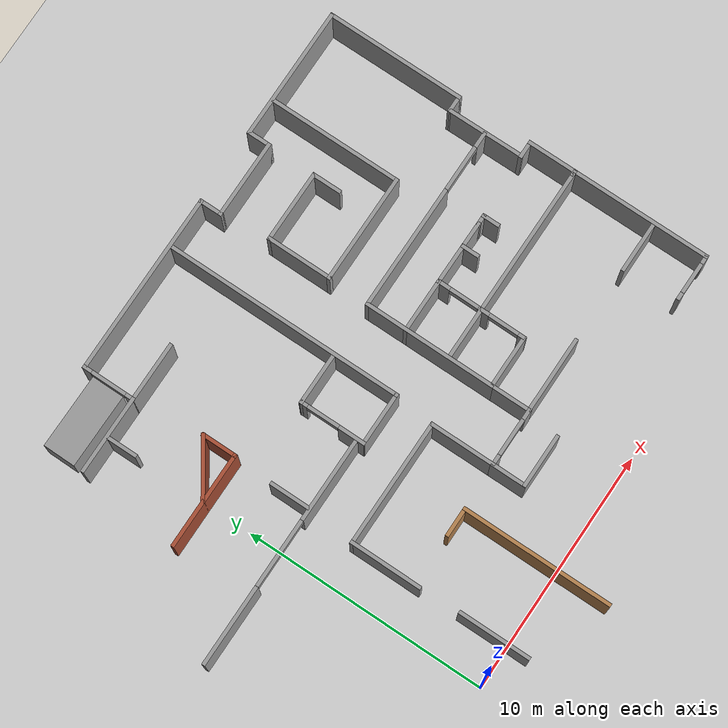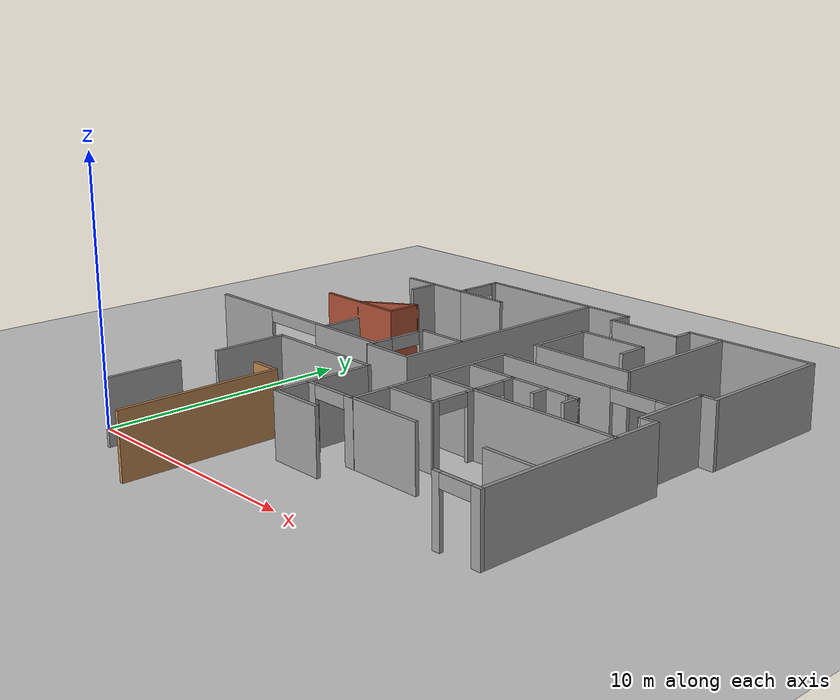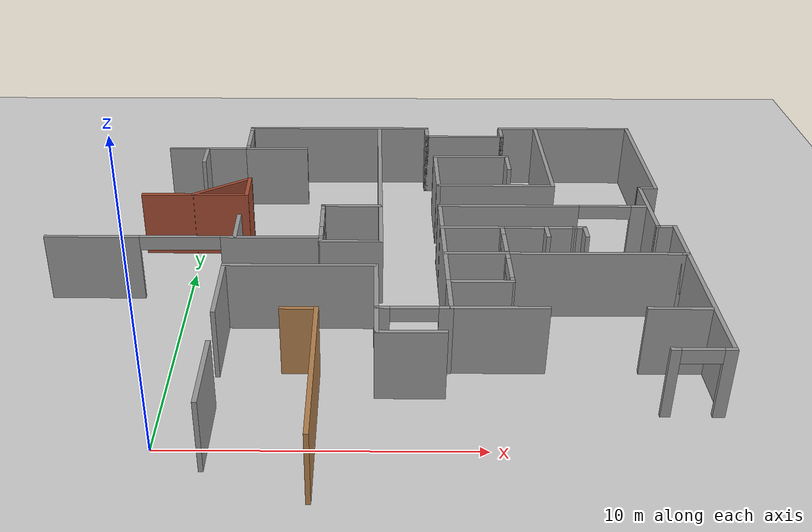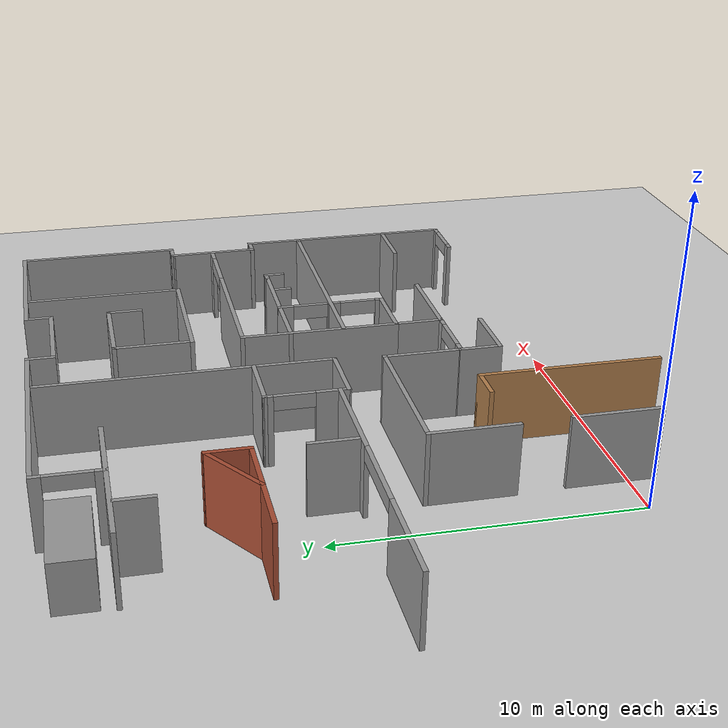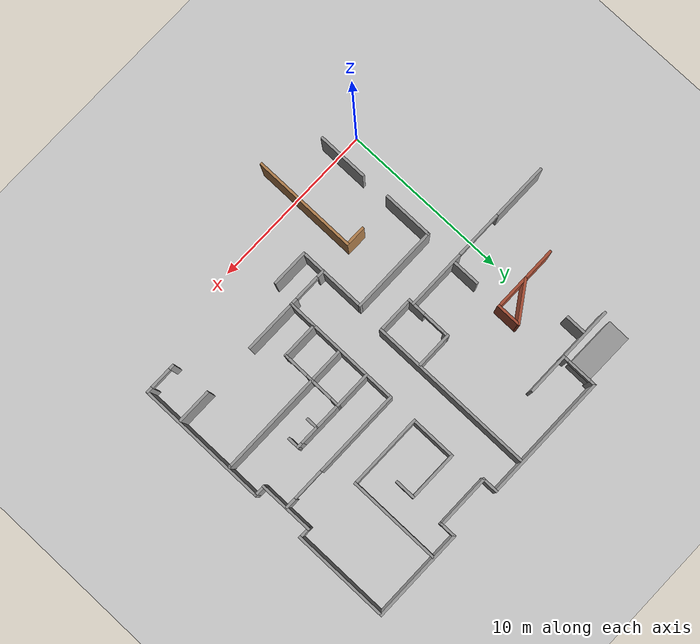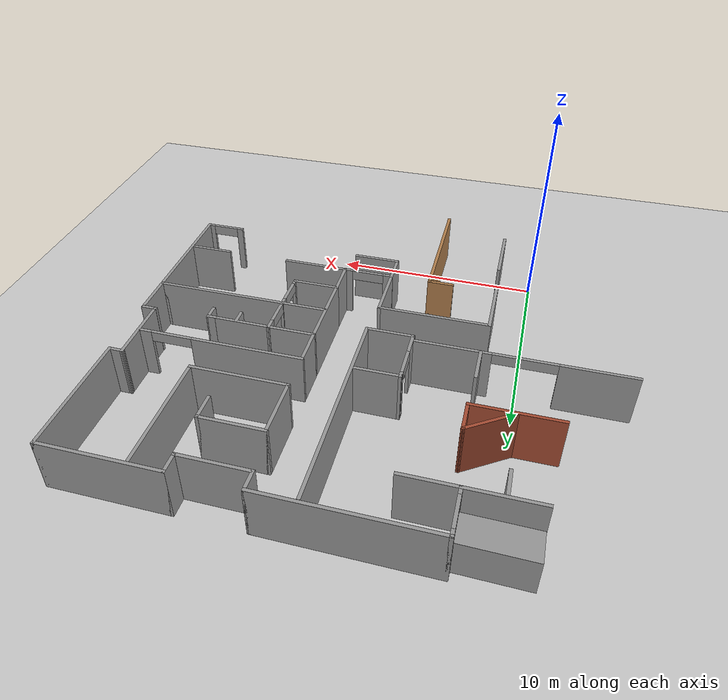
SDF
<sdf version="1.6">
 <world name="default">
  <model name="ground_plane">
   <static>1</static>
   <link name="link">
    <collision name="collision">
     <geometry><plane><normal>0 0 1</normal><size>100 100</size></plane></geometry>
     <surface><friction><ode><mu>100</mu><mu2>50</mu2></ode></friction></surface>
    </collision>
    <visual name="visual">
     <cast_shadows>0</cast_shadows>
     <geometry><plane><normal>0 0 1</normal><size>100 100</size></plane></geometry>
     <material>
      <script><uri>file://media/materials/scripts/gazebo.material</uri><name>Gazebo/Grey</name></script>
     </material>
    </visual>
   </link>
  </model>
  <model name="shopping01">
   <pose>-0.21266 0.4735 0 0 -0 0</pose>
   <link name="Wall_10">
    <pose>1.66978 16.52 0 0 -0 1.5708</pose>
    <visual name="Wall_10_Visual_0">
     <pose>-0.930319 0 1.25 0 -0 0</pose>
     <geometry><box><size>0.389362 0.15 2.5</size></box></geometry>
     <material>
      <script><uri>file://media/materials/scripts/gazebo.material</uri><name>Gazebo/Grey</name></script>
      <ambient>1 1 1 1</ambient>
     </material>
     <meta><layer>0</layer></meta>
    </visual>
    <collision name="Wall_10_Collision_0">
     <geometry><box><size>0.389362 0.15 2.5</size></box></geometry>
     <pose>-0.930319 0 1.25 0 -0 0</pose>
    </collision>
    <visual name="Wall_10_Visual_1">
     <pose>0.932354 0 1.25 0 -0 0</pose>
     <geometry><box><size>0.385291 0.15 2.5</size></box></geometry>
     <material>
      <script><uri>file://media/materials/scripts/gazebo.material</uri><name>Gazebo/Grey</name></script>
      <ambient>1 1 1 1</ambient>
     </material>
     <meta><layer>0</layer></meta>
    </visual>
    <collision name="Wall_10_Collision_1">
     <geometry><box><size>0.385291 0.15 2.5</size></box></geometry>
     <pose>0.932354 0 1.25 0 -0 0</pose>
    </collision>
    <visual name="Wall_10_Visual_2">
     <pose>0.002035 0 2.25 0 -0 0</pose>
     <geometry><box><size>1.47535 0.15 0.5</size></box></geometry>
     <material>
      <script><uri>file://media/materials/scripts/gazebo.material</uri><name>Gazebo/Grey</name></script>
      <ambient>1 1 1 1</ambient>
     </material>
     <meta><layer>0</layer></meta>
    </visual>
    <collision name="Wall_10_Collision_2">
     <geometry><box><size>1.47535 0.15 0.5</size></box></geometry>
     <pose>0.002035 0 2.25 0 -0 0</pose>
    </collision>
   </link>
   <link name="Wall_11">
    <collision name="Wall_11_Collision">
     <geometry><box><size>7.5 0.15 2.5</size></box></geometry>
     <pose>0 0 1.25 0 -0 0</pose>
    </collision>
    <visual name="Wall_11_Visual">
     <pose>0 0 1.25 0 -0 0</pose>
     <geometry><box><size>7.5 0.15 2.5</size></box></geometry>
     <material>
      <script><uri>file://media/materials/scripts/gazebo.material</uri><name>Gazebo/Grey</name></script>
      <ambient>1 1 1 1</ambient>
     </material>
     <meta><layer>0</layer></meta>
    </visual>
    <pose>5.34478 17.57 0 0 -0 0</pose>
   </link>
   <link name="Wall_119">
    <pose>0.137343 8.01732 0 0 -0 0</pose>
    <visual name="Wall_119_Visual_0">
     <pose>-3.20549 0 1.25 0 -0 0</pose>
     <geometry><box><size>3.33901 0.15 2.5</size></box></geometry>
     <material>
      <script><uri>file://media/materials/scripts/gazebo.material</uri><name>Gazebo/Grey</name></script>
      <ambient>1 1 1 1</ambient>
     </material>
     <meta><layer>0</layer></meta>
    </visual>
    <collision name="Wall_119_Collision_0">
     <geometry><box><size>3.33901 0.15 2.5</size></box></geometry>
     <pose>-3.20549 0 1.25 0 -0 0</pose>
    </collision>
    <visual name="Wall_119_Visual_1">
     <pose>3.08493 0 1.25 0 -0 0</pose>
     <geometry><box><size>3.58014 0.15 2.5</size></box></geometry>
     <material>
      <script><uri>file://media/materials/scripts/gazebo.material</uri><name>Gazebo/Grey</name></script>
      <ambient>1 1 1 1</ambient>
     </material>
     <meta><layer>0</layer></meta>
    </visual>
    <collision name="Wall_119_Collision_1">
     <geometry><box><size>3.58014 0.15 2.5</size></box></geometry>
     <pose>3.08493 0 1.25 0 -0 0</pose>
    </collision>
    <visual name="Wall_119_Visual_2">
     <pose>-0.120565 0 2.25 0 -0 0</pose>
     <geometry><box><size>2.83085 0.15 0.5</size></box></geometry>
     <material>
      <script><uri>file://media/materials/scripts/gazebo.material</uri><name>Gazebo/Grey</name></script>
      <ambient>1 1 1 1</ambient>
     </material>
     <meta><layer>0</layer></meta>
    </visual>
    <collision name="Wall_119_Collision_2">
     <geometry><box><size>2.83085 0.15 0.5</size></box></geometry>
     <pose>-0.120565 0 2.25 0 -0 0</pose>
    </collision>
   </link>
   <link name="Wall_12">
    <collision name="Wall_12_Collision">
     <geometry><box><size>1 0.15 2.5</size></box></geometry>
     <pose>0 0 1.25 0 -0 0</pose>
    </collision>
    <visual name="Wall_12_Visual">
     <pose>0 0 1.25 0 -0 0</pose>
     <geometry><box><size>1 0.15 2.5</size></box></geometry>
     <material>
      <script><uri>file://media/materials/scripts/gazebo.material</uri><name>Gazebo/Grey</name></script>
      <ambient>1 1 1 1</ambient>
     </material>
     <meta><layer>0</layer></meta>
    </visual>
    <pose>9.01978 17.145 0 0 -0 -1.5708</pose>
   </link>
   <link name="Wall_121">
    <collision name="Wall_121_Collision">
     <geometry><box><size>9.81925 0.15 2.5</size></box></geometry>
     <pose>0 0 1.25 0 -0 0</pose>
    </collision>
    <visual name="Wall_121_Visual">
     <pose>0 0 1.25 0 -0 0</pose>
     <geometry><box><size>9.81925 0.15 2.5</size></box></geometry>
     <material>
      <script><uri>file://media/materials/scripts/gazebo.material</uri><name>Gazebo/Grey</name></script>
      <ambient>1 1 1 1</ambient>
     </material>
     <meta><layer>0</layer></meta>
    </visual>
    <pose>7.04005 12.5786 0 0 -0 -1.57076</pose>
   </link>
   <link name="Wall_122">
    <collision name="Wall_122_Collision">
     <geometry><box><size>2.25 0.15 2.5</size></box></geometry>
     <pose>0 0 1.25 0 -0 0</pose>
    </collision>
    <visual name="Wall_122_Visual">
     <pose>0 0 1.25 0 -0 0</pose>
     <geometry><box><size>2.25 0.15 2.5</size></box></geometry>
     <material>
      <script><uri>file://media/materials/scripts/gazebo.material</uri><name>Gazebo/Grey</name></script>
      <ambient>1 1 1 1</ambient>
     </material>
     <meta><layer>0</layer></meta>
    </visual>
    <pose>5.99022 7.74395 0 0 -0 3.14159</pose>
   </link>
   <link name="Wall_123">
    <pose>4.94005 9.07858 0 0 -0 1.57092</pose>
    <visual name="Wall_123_Visual_0">
     <pose>-0.843207 0 1.25 0 -0 0</pose>
     <geometry><box><size>1.13283 0.15 2.5</size></box></geometry>
     <material>
      <script><uri>file://media/materials/scripts/gazebo.material</uri><name>Gazebo/Grey</name></script>
      <ambient>1 1 1 1</ambient>
     </material>
     <meta><layer>0</layer></meta>
    </visual>
    <collision name="Wall_123_Collision_0">
     <geometry><box><size>1.13283 0.15 2.5</size></box></geometry>
     <pose>-0.843207 0 1.25 0 -0 0</pose>
    </collision>
    <visual name="Wall_123_Visual_1">
     <pose>1.23871 0 1.25 0 -0 0</pose>
     <geometry><box><size>0.341833 0.15 2.5</size></box></geometry>
     <material>
      <script><uri>file://media/materials/scripts/gazebo.material</uri><name>Gazebo/Grey</name></script>
      <ambient>1 1 1 1</ambient>
     </material>
     <meta><layer>0</layer></meta>
    </visual>
    <collision name="Wall_123_Collision_1">
     <geometry><box><size>0.341833 0.15 2.5</size></box></geometry>
     <pose>1.23871 0 1.25 0 -0 0</pose>
    </collision>
    <visual name="Wall_123_Visual_2">
     <pose>0.3955 0 2.25 0 -0 0</pose>
     <geometry><box><size>1.34458 0.15 0.5</size></box></geometry>
     <material>
      <script><uri>file://media/materials/scripts/gazebo.material</uri><name>Gazebo/Grey</name></script>
      <ambient>1 1 1 1</ambient>
     </material>
     <meta><layer>0</layer></meta>
    </visual>
    <collision name="Wall_123_Collision_2">
     <geometry><box><size>1.34458 0.15 0.5</size></box></geometry>
     <pose>0.3955 0 2.25 0 -0 0</pose>
    </collision>
   </link>
   <link name="Wall_124">
    <collision name="Wall_124_Collision">
     <geometry><box><size>2.25 0.15 2.5</size></box></geometry>
     <pose>0 0 1.25 0 -0 0</pose>
    </collision>
    <visual name="Wall_124_Visual">
     <pose>0 0 1.25 0 -0 0</pose>
     <geometry><box><size>2.25 0.15 2.5</size></box></geometry>
     <material>
      <script><uri>file://media/materials/scripts/gazebo.material</uri><name>Gazebo/Grey</name></script>
      <ambient>1 1 1 1</ambient>
     </material>
     <meta><layer>0</layer></meta>
    </visual>
    <pose>5.98988 10.4132 0 0 -0 0</pose>
   </link>
   <link name="Wall_128">
    <collision name="Wall_128_Collision">
     <geometry><box><size>4 0.15 2.5</size></box></geometry>
     <pose>0 0 1.25 0 -0 0</pose>
    </collision>
    <visual name="Wall_128_Visual">
     <pose>0 0 1.25 0 -0 0</pose>
     <geometry><box><size>4 0.15 2.5</size></box></geometry>
     <material>
      <script><uri>file://media/materials/scripts/gazebo.material</uri><name>Gazebo/Bricks</name></script>
      <ambient>1 1 1 1</ambient>
     </material>
     <meta><layer>0</layer></meta>
    </visual>
    <pose>0.090278 11.2942 0 0 -0 0</pose>
   </link>
   <link name="Wall_13">
    <collision name="Wall_13_Collision">
     <geometry><box><size>3.25 0.15 2.5</size></box></geometry>
     <pose>0 0 1.25 0 -0 0</pose>
    </collision>
    <visual name="Wall_13_Visual">
     <pose>0 0 1.25 0 -0 0</pose>
     <geometry><box><size>3.25 0.15 2.5</size></box></geometry>
     <material>
      <script><uri>file://media/materials/scripts/gazebo.material</uri><name>Gazebo/Grey</name></script>
      <ambient>1 1 1 1</ambient>
     </material>
     <meta><layer>0</layer></meta>
    </visual>
    <pose>10.5698 16.72 0 0 -0 0</pose>
   </link>
   <link name="Wall_130">
    <collision name="Wall_130_Collision">
     <geometry><box><size>1.75 0.15 2.5</size></box></geometry>
     <pose>0 0 1.25 0 -0 0</pose>
    </collision>
    <visual name="Wall_130_Visual">
     <pose>0 0 1.25 0 -0 0</pose>
     <geometry><box><size>1.75 0.15 2.5</size></box></geometry>
     <material>
      <script><uri>file://media/materials/scripts/gazebo.material</uri><name>Gazebo/Grey</name></script>
      <ambient>1 1 1 1</ambient>
     </material>
     <meta><layer>0</layer></meta>
    </visual>
    <pose>1.92118 8.82789 0 0 -0 -1.5708</pose>
   </link>
   <link name="Wall_134">
    <collision name="Wall_134_Collision">
     <geometry><box><size>1.25 0.15 2.5</size></box></geometry>
     <pose>0 0 1.25 0 -0 0</pose>
    </collision>
    <visual name="Wall_134_Visual">
     <pose>0 0 1.25 0 -0 0</pose>
     <geometry><box><size>1.25 0.15 2.5</size></box></geometry>
     <material>
      <script><uri>file://media/materials/scripts/gazebo.material</uri><name>Gazebo/Grey</name></script>
      <ambient>1 1 1 1</ambient>
     </material>
     <meta><layer>0</layer></meta>
    </visual>
    <pose>0.043228 14.8056 0 0 -0 -1.5708</pose>
   </link>
   <link name="Wall_14">
    <collision name="Wall_14_Collision">
     <geometry><box><size>1 0.15 2.5</size></box></geometry>
     <pose>0 0 1.25 0 -0 0</pose>
    </collision>
    <visual name="Wall_14_Visual">
     <pose>0 0 1.25 0 -0 0</pose>
     <geometry><box><size>1 0.15 2.5</size></box></geometry>
     <material>
      <script><uri>file://media/materials/scripts/gazebo.material</uri><name>Gazebo/Grey</name></script>
      <ambient>1 1 1 1</ambient>
     </material>
     <meta><layer>0</layer></meta>
    </visual>
    <pose>12.1198 17.145 0 0 -0 1.5708</pose>
   </link>
   <link name="Wall_142">
    <collision name="Wall_142_Collision">
     <geometry><box><size>1.5 0.15 2.5</size></box></geometry>
     <pose>0 0 1.25 0 -0 0</pose>
    </collision>
    <visual name="Wall_142_Visual">
     <pose>0 0 1.25 0 -0 0</pose>
     <geometry><box><size>1.5 0.15 2.5</size></box></geometry>
     <material>
      <script><uri>file://media/materials/scripts/gazebo.material</uri><name>Gazebo/Bricks</name></script>
      <ambient>1 1 1 1</ambient>
     </material>
     <meta><layer>0</layer></meta>
    </visual>
    <pose>2.0179 11.9709 0 0 -0 -1.5708</pose>
   </link>
   <link name="Wall_144">
    <collision name="Wall_144_Collision">
     <geometry><box><size>2.51616 0.15 2.5</size></box></geometry>
     <pose>0 0 1.25 0 -0 0</pose>
    </collision>
    <visual name="Wall_144_Visual">
     <pose>0 0 1.25 0 -0 0</pose>
     <geometry><box><size>2.51616 0.15 2.5</size></box></geometry>
     <material>
      <script><uri>file://media/materials/scripts/gazebo.material</uri><name>Gazebo/Bricks</name></script>
      <ambient>1 1 1 1</ambient>
     </material>
     <meta><layer>0</layer></meta>
    </visual>
    <pose>1.023 11.9828 0 0 -0 0.594988</pose>
   </link>
   <link name="Wall_148">
    <collision name="Wall_148_Collision">
     <geometry><box><size>2.5 0.15 2.5</size></box></geometry>
     <pose>0 0 1.25 0 -0 0</pose>
    </collision>
    <visual name="Wall_148_Visual">
     <pose>0 0 1.25 0 -0 0</pose>
     <geometry><box><size>2.5 0.15 2.5</size></box></geometry>
     <material>
      <script><uri>file://media/materials/scripts/gazebo.material</uri><name>Gazebo/Grey</name></script>
      <ambient>1 1 1 1</ambient>
     </material>
     <meta><layer>0</layer></meta>
    </visual>
    <pose>2.84478 15.47 0 0 -0 0</pose>
   </link>
   <link name="Wall_15">
    <collision name="Wall_15_Collision">
     <geometry><box><size>5.5 0.15 2.5</size></box></geometry>
     <pose>0 0 1.25 0 -0 0</pose>
    </collision>
    <visual name="Wall_15_Visual">
     <pose>0 0 1.25 0 -0 0</pose>
     <geometry><box><size>5.5 0.15 2.5</size></box></geometry>
     <material>
      <script><uri>file://media/materials/scripts/gazebo.material</uri><name>Gazebo/Grey</name></script>
      <ambient>1 1 1 1</ambient>
     </material>
     <meta><layer>0</layer></meta>
    </visual>
    <pose>14.7948 17.57 0 0 -0 0</pose>
   </link>
   <link name="Wall_150">
    <collision name="Wall_150_Collision">
     <geometry><box><size>5.5 0.15 2.5</size></box></geometry>
     <pose>0 0 1.25 0 -0 0</pose>
    </collision>
    <visual name="Wall_150_Visual">
     <pose>0 0 1.25 0 -0 0</pose>
     <geometry><box><size>5.5 0.15 2.5</size></box></geometry>
     <material>
      <script><uri>file://media/materials/scripts/gazebo.material</uri><name>Gazebo/Grey</name></script>
      <ambient>1 1 1 1</ambient>
     </material>
     <meta><layer>0</layer></meta>
    </visual>
    <pose>13.6065 14.8095 0 0 -0 -1.5708</pose>
   </link>
   <link name="Wall_155">
    <pose>13.0197 10.4465 0 0 -0 3.14159</pose>
    <visual name="Wall_155_Visual_0">
     <pose>-3.54597 0 1.25 0 -0 0</pose>
     <geometry><box><size>0.658053 0.15 2.5</size></box></geometry>
     <material>
      <script><uri>file://media/materials/scripts/gazebo.material</uri><name>Gazebo/Grey</name></script>
      <ambient>1 1 1 1</ambient>
     </material>
     <meta><layer>0</layer></meta>
    </visual>
    <collision name="Wall_155_Collision_0">
     <geometry><box><size>0.658053 0.15 2.5</size></box></geometry>
     <pose>-3.54597 0 1.25 0 -0 0</pose>
    </collision>
    <visual name="Wall_155_Visual_1">
     <pose>1.28217 0 1.25 0 -0 0</pose>
     <geometry><box><size>5.18566 0.15 2.5</size></box></geometry>
     <material>
      <script><uri>file://media/materials/scripts/gazebo.material</uri><name>Gazebo/Grey</name></script>
      <ambient>1 1 1 1</ambient>
     </material>
     <meta><layer>0</layer></meta>
    </visual>
    <collision name="Wall_155_Collision_1">
     <geometry><box><size>5.18566 0.15 2.5</size></box></geometry>
     <pose>1.28217 0 1.25 0 -0 0</pose>
    </collision>
    <visual name="Wall_155_Visual_2">
     <pose>-2.2638 0 2.25 0 -0 0</pose>
     <geometry><box><size>1.90629 0.15 0.5</size></box></geometry>
     <material>
      <script><uri>file://media/materials/scripts/gazebo.material</uri><name>Gazebo/Grey</name></script>
      <ambient>1 1 1 1</ambient>
     </material>
     <meta><layer>0</layer></meta>
    </visual>
    <collision name="Wall_155_Collision_2">
     <geometry><box><size>1.90629 0.15 0.5</size></box></geometry>
     <pose>-2.2638 0 2.25 0 -0 0</pose>
    </collision>
   </link>
   <link name="Wall_156">
    <collision name="Wall_156_Collision">
     <geometry><box><size>5.5 0.15 2.5</size></box></geometry>
     <pose>0 0 1.25 0 -0 0</pose>
    </collision>
    <visual name="Wall_156_Visual">
     <pose>0 0 1.25 0 -0 0</pose>
     <geometry><box><size>5.5 0.15 2.5</size></box></geometry>
     <material>
      <script><uri>file://media/materials/scripts/gazebo.material</uri><name>Gazebo/Grey</name></script>
      <ambient>1 1 1 1</ambient>
     </material>
     <meta><layer>0</layer></meta>
    </visual>
    <pose>9.21946 7.7712 0 0 -0 -1.57089</pose>
   </link>
   <link name="Wall_157">
    <collision name="Wall_157_Collision">
     <geometry><box><size>2.25 0.15 2.5</size></box></geometry>
     <pose>0 0 1.25 0 -0 0</pose>
    </collision>
    <visual name="Wall_157_Visual">
     <pose>0 0 1.25 0 -0 0</pose>
     <geometry><box><size>2.25 0.15 2.5</size></box></geometry>
     <material>
      <script><uri>file://media/materials/scripts/gazebo.material</uri><name>Gazebo/Grey</name></script>
      <ambient>1 1 1 1</ambient>
     </material>
     <meta><layer>0</layer></meta>
    </visual>
    <pose>10.2695 5.0962 0 0 -0 0.000237</pose>
   </link>
   <link name="Wall_158">
    <pose>11.3305 6.93931 0 0 -0 1.56492</pose>
    <visual name="Wall_158_Visual_0">
     <pose>-1.76364 0 1.25 0 -0 0</pose>
     <geometry><box><size>0.308432 0.15 2.5</size></box></geometry>
     <material>
      <script><uri>file://media/materials/scripts/gazebo.material</uri><name>Gazebo/Grey</name></script>
      <ambient>1 1 1 1</ambient>
     </material>
     <meta><layer>0</layer></meta>
    </visual>
    <collision name="Wall_158_Collision_0">
     <geometry><box><size>0.308432 0.15 2.5</size></box></geometry>
     <pose>-1.76364 0 1.25 0 -0 0</pose>
    </collision>
    <visual name="Wall_158_Visual_1">
     <pose>-0.107689 0 1.25 0 -0 0</pose>
     <geometry><box><size>0.471109 0.15 2.5</size></box></geometry>
     <material>
      <script><uri>file://media/materials/scripts/gazebo.material</uri><name>Gazebo/Grey</name></script>
      <ambient>1 1 1 1</ambient>
     </material>
     <meta><layer>0</layer></meta>
    </visual>
    <collision name="Wall_158_Collision_1">
     <geometry><box><size>0.471109 0.15 2.5</size></box></geometry>
     <pose>-0.107689 0 1.25 0 -0 0</pose>
    </collision>
    <visual name="Wall_158_Visual_2">
     <pose>1.63295 0 1.25 0 -0 0</pose>
     <geometry><box><size>0.569818 0.15 2.5</size></box></geometry>
     <material>
      <script><uri>file://media/materials/scripts/gazebo.material</uri><name>Gazebo/Grey</name></script>
      <ambient>1 1 1 1</ambient>
     </material>
     <meta><layer>0</layer></meta>
    </visual>
    <collision name="Wall_158_Collision_2">
     <geometry><box><size>0.569818 0.15 2.5</size></box></geometry>
     <pose>1.63295 0 1.25 0 -0 0</pose>
    </collision>
    <visual name="Wall_158_Visual_3">
     <pose>-0.976336 0 2.25 0 -0 0</pose>
     <geometry><box><size>1.26618 0.15 0.5</size></box></geometry>
     <material>
      <script><uri>file://media/materials/scripts/gazebo.material</uri><name>Gazebo/Grey</name></script>
      <ambient>1 1 1 1</ambient>
     </material>
     <meta><layer>0</layer></meta>
    </visual>
    <collision name="Wall_158_Collision_3">
     <geometry><box><size>1.26618 0.15 0.5</size></box></geometry>
     <pose>-0.976336 0 2.25 0 -0 0</pose>
    </collision>
    <visual name="Wall_158_Visual_4">
     <pose>0.737954 0 2.25 0 -0 0</pose>
     <geometry><box><size>1.22018 0.15 0.5</size></box></geometry>
     <material>
      <script><uri>file://media/materials/scripts/gazebo.material</uri><name>Gazebo/Grey</name></script>
      <ambient>1 1 1 1</ambient>
     </material>
     <meta><layer>0</layer></meta>
    </visual>
    <collision name="Wall_158_Collision_4">
     <geometry><box><size>1.22018 0.15 0.5</size></box></geometry>
     <pose>0.737954 0 2.25 0 -0 0</pose>
    </collision>
   </link>
   <link name="Wall_16">
    <collision name="Wall_16_Collision">
     <geometry><box><size>5.75 0.15 2.5</size></box></geometry>
     <pose>0 0 1.25 0 -0 0</pose>
    </collision>
    <visual name="Wall_16_Visual">
     <pose>0 0 1.25 0 -0 0</pose>
     <geometry><box><size>5.75 0.15 2.5</size></box></geometry>
     <material>
      <script><uri>file://media/materials/scripts/gazebo.material</uri><name>Gazebo/Grey</name></script>
      <ambient>1 1 1 1</ambient>
     </material>
     <meta><layer>0</layer></meta>
    </visual>
    <pose>17.4698 14.77 0 0 -0 -1.5708</pose>
   </link>
   <link name="Wall_162">
    <collision name="Wall_162_Collision">
     <geometry><box><size>2.27274 0.15 2.5</size></box></geometry>
     <pose>0 0 1.25 0 -0 0</pose>
    </collision>
    <visual name="Wall_162_Visual">
     <pose>0 0 1.25 0 -0 0</pose>
     <geometry><box><size>2.27274 0.15 2.5</size></box></geometry>
     <material>
      <script><uri>file://media/materials/scripts/gazebo.material</uri><name>Gazebo/Grey</name></script>
      <ambient>1 1 1 1</ambient>
     </material>
     <meta><layer>0</layer></meta>
    </visual>
    <pose>10.28 8.78217 0 0 -0 0</pose>
   </link>
   <link name="Wall_164">
    <collision name="Wall_164_Collision">
     <geometry><box><size>8.25 0.15 2.5</size></box></geometry>
     <pose>0 0 1.25 0 -0 0</pose>
    </collision>
    <visual name="Wall_164_Visual">
     <pose>0 0 1.25 0 -0 0</pose>
     <geometry><box><size>8.25 0.15 2.5</size></box></geometry>
     <material>
      <script><uri>file://media/materials/scripts/gazebo.material</uri><name>Gazebo/Grey</name></script>
      <ambient>1 1 1 1</ambient>
     </material>
     <meta><layer>0</layer></meta>
    </visual>
    <pose>13.2999 6.94076 0 0 -0 0</pose>
   </link>
   <link name="Wall_165">
    <collision name="Wall_165_Collision">
     <geometry><box><size>0.25 0.15 2.5</size></box></geometry>
     <pose>0 0 1.25 0 -0 0</pose>
    </collision>
    <visual name="Wall_165_Visual">
     <pose>0 0 1.25 0 -0 0</pose>
     <geometry><box><size>0.25 0.15 2.5</size></box></geometry>
     <material>
      <script><uri>file://media/materials/scripts/gazebo.material</uri><name>Gazebo/Grey</name></script>
      <ambient>1 1 1 1</ambient>
     </material>
     <meta><layer>0</layer></meta>
    </visual>
    <pose>17.3999 6.94076 0 0 -0 0</pose>
   </link>
   <link name="Wall_167">
    <pose>13.3049 3.50487 0 0 -0 3.14159</pose>
    <visual name="Wall_167_Visual_0">
     <pose>-3.08242 0 1.25 0 -0 0</pose>
     <geometry><box><size>2.08515 0.15 2.5</size></box></geometry>
     <material>
      <script><uri>file://media/materials/scripts/gazebo.material</uri><name>Gazebo/Grey</name></script>
      <ambient>1 1 1 1</ambient>
     </material>
     <meta><layer>0</layer></meta>
    </visual>
    <collision name="Wall_167_Collision_0">
     <geometry><box><size>2.08515 0.15 2.5</size></box></geometry>
     <pose>-3.08242 0 1.25 0 -0 0</pose>
    </collision>
    <visual name="Wall_167_Visual_1">
     <pose>2.54458 0 1.25 0 -0 0</pose>
     <geometry><box><size>3.16085 0.15 2.5</size></box></geometry>
     <material>
      <script><uri>file://media/materials/scripts/gazebo.material</uri><name>Gazebo/Grey</name></script>
      <ambient>1 1 1 1</ambient>
     </material>
     <meta><layer>0</layer></meta>
    </visual>
    <collision name="Wall_167_Collision_1">
     <geometry><box><size>3.16085 0.15 2.5</size></box></geometry>
     <pose>2.54458 0 1.25 0 -0 0</pose>
    </collision>
   </link>
   <link name="Wall_169">
    <collision name="Wall_169_Collision">
     <geometry><box><size>1.75 0.15 2.5</size></box></geometry>
     <pose>0 0 1.25 0 -0 0</pose>
    </collision>
    <visual name="Wall_169_Visual">
     <pose>0 0 1.25 0 -0 0</pose>
     <geometry><box><size>1.75 0.15 2.5</size></box></geometry>
     <material>
      <script><uri>file://media/materials/scripts/gazebo.material</uri><name>Gazebo/Grey</name></script>
      <ambient>1 1 1 1</ambient>
     </material>
     <meta><layer>0</layer></meta>
    </visual>
    <pose>9.21922 4.29596 0 0 -0 -1.5708</pose>
   </link>
   <link name="Wall_17">
    <collision name="Wall_17_Collision">
     <geometry><box><size>0.75 0.15 2.5</size></box></geometry>
     <pose>0 0 1.25 0 -0 0</pose>
    </collision>
    <visual name="Wall_17_Visual">
     <pose>0 0 1.25 0 -0 0</pose>
     <geometry><box><size>0.75 0.15 2.5</size></box></geometry>
     <material>
      <script><uri>file://media/materials/scripts/gazebo.material</uri><name>Gazebo/Grey</name></script>
      <ambient>1 1 1 1</ambient>
     </material>
     <meta><layer>0</layer></meta>
    </visual>
    <pose>17.1698 11.97 0 0 -0 3.14159</pose>
   </link>
   <link name="Wall_171">
    <pose>8.04422 3.49595 0 0 -0 3.14159</pose>
    <visual name="Wall_171_Visual_0">
     <pose>-1.01626 0 1.25 0 -0 0</pose>
     <geometry><box><size>0.467482 0.15 2.5</size></box></geometry>
     <material>
      <script><uri>file://media/materials/scripts/gazebo.material</uri><name>Gazebo/Grey</name></script>
      <ambient>1 1 1 1</ambient>
     </material>
     <meta><layer>0</layer></meta>
    </visual>
    <collision name="Wall_171_Collision_0">
     <geometry><box><size>0.467482 0.15 2.5</size></box></geometry>
     <pose>-1.01626 0 1.25 0 -0 0</pose>
    </collision>
    <visual name="Wall_171_Visual_1">
     <pose>1.00392 0 1.25 0 -0 0</pose>
     <geometry><box><size>0.492154 0.15 2.5</size></box></geometry>
     <material>
      <script><uri>file://media/materials/scripts/gazebo.material</uri><name>Gazebo/Grey</name></script>
      <ambient>1 1 1 1</ambient>
     </material>
     <meta><layer>0</layer></meta>
    </visual>
    <collision name="Wall_171_Collision_1">
     <geometry><box><size>0.492154 0.15 2.5</size></box></geometry>
     <pose>1.00392 0 1.25 0 -0 0</pose>
    </collision>
    <visual name="Wall_171_Visual_2">
     <pose>-0.012336 0 2.25 0 -0 0</pose>
     <geometry><box><size>1.54036 0.15 0.5</size></box></geometry>
     <material>
      <script><uri>file://media/materials/scripts/gazebo.material</uri><name>Gazebo/Grey</name></script>
      <ambient>1 1 1 1</ambient>
     </material>
     <meta><layer>0</layer></meta>
    </visual>
    <collision name="Wall_171_Collision_2">
     <geometry><box><size>1.54036 0.15 0.5</size></box></geometry>
     <pose>-0.012336 0 2.25 0 -0 0</pose>
    </collision>
   </link>
   <link name="Wall_172">
    <collision name="Wall_172_Collision">
     <geometry><box><size>2.75 0.15 2.5</size></box></geometry>
     <pose>0 0 1.25 0 -0 0</pose>
    </collision>
    <visual name="Wall_172_Visual">
     <pose>0 0 1.25 0 -0 0</pose>
     <geometry><box><size>2.75 0.15 2.5</size></box></geometry>
     <material>
      <script><uri>file://media/materials/scripts/gazebo.material</uri><name>Gazebo/Grey</name></script>
      <ambient>1 1 1 1</ambient>
     </material>
     <meta><layer>0</layer></meta>
    </visual>
    <pose>6.86922 4.79596 0 0 -0 1.5708</pose>
   </link>
   <link name="Wall_173">
    <collision name="Wall_173_Collision">
     <geometry><box><size>5.25 0.15 2.5</size></box></geometry>
     <pose>0 0 1.25 0 -0 0</pose>
    </collision>
    <visual name="Wall_173_Visual">
     <pose>0 0 1.25 0 -0 0</pose>
     <geometry><box><size>5.25 0.15 2.5</size></box></geometry>
     <material>
      <script><uri>file://media/materials/scripts/gazebo.material</uri><name>Gazebo/Grey</name></script>
      <ambient>1 1 1 1</ambient>
     </material>
     <meta><layer>0</layer></meta>
    </visual>
    <pose>4.31922 6.09596 0 0 -0 3.14159</pose>
   </link>
   <link name="Wall_174">
    <collision name="Wall_174_Collision">
     <geometry><box><size>3 0.15 2.5</size></box></geometry>
     <pose>0 0 1.25 0 -0 0</pose>
    </collision>
    <visual name="Wall_174_Visual">
     <pose>0 0 1.25 0 -0 0</pose>
     <geometry><box><size>3 0.15 2.5</size></box></geometry>
     <material>
      <script><uri>file://media/materials/scripts/gazebo.material</uri><name>Gazebo/Grey</name></script>
      <ambient>1 1 1 1</ambient>
     </material>
     <meta><layer>0</layer></meta>
    </visual>
    <pose>1.76922 4.67096 0 0 -0 -1.5708</pose>
   </link>
   <link name="Wall_176">
    <collision name="Wall_176_Collision">
     <geometry><box><size>3 0.15 2.5</size></box></geometry>
     <pose>0 0 1.25 0 -0 0</pose>
    </collision>
    <visual name="Wall_176_Visual">
     <pose>0 0 1.25 0 -0 0</pose>
     <geometry><box><size>3 0.15 2.5</size></box></geometry>
     <material>
      <script><uri>file://media/materials/scripts/gazebo.material</uri><name>Gazebo/Grey</name></script>
      <ambient>1 1 1 1</ambient>
     </material>
     <meta><layer>0</layer></meta>
    </visual>
    <pose>1.83663 0.105846 0 0 -0 -1.5708</pose>
   </link>
   <link name="Wall_18">
    <collision name="Wall_18_Collision">
     <geometry><box><size>3.24012 0.15 2.5</size></box></geometry>
     <pose>0 0 1.25 0 -0 0</pose>
    </collision>
    <visual name="Wall_18_Visual">
     <pose>0 0 1.25 0 -0 0</pose>
     <geometry><box><size>3.24012 0.15 2.5</size></box></geometry>
     <material>
      <script><uri>file://media/materials/scripts/gazebo.material</uri><name>Gazebo/Grey</name></script>
      <ambient>1 1 1 1</ambient>
     </material>
     <meta><layer>0</layer></meta>
    </visual>
    <pose>16.8797 10.425 0 0 -0 -1.56436</pose>
   </link>
   <link name="Wall_184">
    <collision name="Wall_184_Collision">
     <geometry><box><size>1.5 0.15 2.5</size></box></geometry>
     <pose>0 0 1.25 0 -0 0</pose>
    </collision>
    <visual name="Wall_184_Visual">
     <pose>0 0 1.25 0 -0 0</pose>
     <geometry><box><size>1.5 0.15 2.5</size></box></geometry>
     <material>
      <script><uri>file://media/materials/scripts/gazebo.material</uri><name>Gazebo/Grey</name></script>
      <ambient>1 1 1 1</ambient>
     </material>
     <meta><layer>0</layer></meta>
    </visual>
    <pose>6.86922 2.82096 0 0 -0 -1.5708</pose>
   </link>
   <link name="Wall_185">
    <collision name="Wall_185_Collision">
     <geometry><box><size>2.25 0.15 2.5</size></box></geometry>
     <pose>0 0 1.25 0 -0 0</pose>
    </collision>
    <visual name="Wall_185_Visual">
     <pose>0 0 1.25 0 -0 0</pose>
     <geometry><box><size>2.25 0.15 2.5</size></box></geometry>
     <material>
      <script><uri>file://media/materials/scripts/gazebo.material</uri><name>Gazebo/Grey</name></script>
      <ambient>1 1 1 1</ambient>
     </material>
     <meta><layer>0</layer></meta>
    </visual>
    <pose>7.91922 2.14595 0 0 -0 0</pose>
   </link>
   <link name="Wall_19">
    <collision name="Wall_19_Collision">
     <geometry><box><size>0.75 0.15 2.5</size></box></geometry>
     <pose>0 0 1.25 0 -0 0</pose>
    </collision>
    <visual name="Wall_19_Visual">
     <pose>0 0 1.25 0 -0 0</pose>
     <geometry><box><size>0.75 0.15 2.5</size></box></geometry>
     <material>
      <script><uri>file://media/materials/scripts/gazebo.material</uri><name>Gazebo/Grey</name></script>
      <ambient>1 1 1 1</ambient>
     </material>
     <meta><layer>0</layer></meta>
    </visual>
    <pose>17.1797 8.87999 0 0 -0 0</pose>
   </link>
   <link name="Wall_199">
    <collision name="Wall_199_Collision">
     <geometry><box><size>1.25 0.15 2.5</size></box></geometry>
     <pose>0 0 1.25 0 -0 0</pose>
    </collision>
    <visual name="Wall_199_Visual">
     <pose>0 0 1.25 0 -0 0</pose>
     <geometry><box><size>1.25 0.15 2.5</size></box></geometry>
     <material>
      <script><uri>file://media/materials/scripts/gazebo.material</uri><name>Gazebo/Wood</name></script>
      <ambient>1 1 1 1</ambient>
     </material>
     <meta><layer>0</layer></meta>
    </visual>
    <pose>4.43723 3.44103 0 0 -0 0</pose>
   </link>
   <link name="Wall_200">
    <collision name="Wall_200_Collision">
     <geometry><box><size>6.25 0.15 2.5</size></box></geometry>
     <pose>0 0 1.25 0 -0 0</pose>
    </collision>
    <visual name="Wall_200_Visual">
     <pose>0 0 1.25 0 -0 0</pose>
     <geometry><box><size>6.25 0.15 2.5</size></box></geometry>
     <material>
      <script><uri>file://media/materials/scripts/gazebo.material</uri><name>Gazebo/Wood</name></script>
      <ambient>1 1 1 1</ambient>
     </material>
     <meta><layer>0</layer></meta>
    </visual>
    <pose>4.98723 0.391029 0 0 -0 -1.5708</pose>
   </link>
   <link name="Wall_21">
    <collision name="Wall_21_Collision">
     <geometry><box><size>7.75 0.15 2.5</size></box></geometry>
     <pose>0 0 1.25 0 -0 0</pose>
    </collision>
    <visual name="Wall_21_Visual">
     <pose>0 0 1.25 0 -0 0</pose>
     <geometry><box><size>7.75 0.15 2.5</size></box></geometry>
     <material>
      <script><uri>file://media/materials/scripts/gazebo.material</uri><name>Gazebo/Grey</name></script>
      <ambient>1 1 1 1</ambient>
     </material>
     <meta><layer>0</layer></meta>
    </visual>
    <pose>17.4797 5.07999 0 0 -0 -1.5708</pose>
   </link>
   <link name="Wall_22">
    <pose>16.5547 1.27999 0 0 -0 3.14159</pose>
    <visual name="Wall_22_Visual_0">
     <pose>-0.802836 0 1.25 0 -0 0</pose>
     <geometry><box><size>0.394329 0.15 2.5</size></box></geometry>
     <material>
      <script><uri>file://media/materials/scripts/gazebo.material</uri><name>Gazebo/Grey</name></script>
      <ambient>1 1 1 1</ambient>
     </material>
     <meta><layer>0</layer></meta>
    </visual>
    <collision name="Wall_22_Collision_0">
     <geometry><box><size>0.394329 0.15 2.5</size></box></geometry>
     <pose>-0.802836 0 1.25 0 -0 0</pose>
    </collision>
    <visual name="Wall_22_Visual_1">
     <pose>0.84045 0 1.25 0 -0 0</pose>
     <geometry><box><size>0.319099 0.15 2.5</size></box></geometry>
     <material>
      <script><uri>file://media/materials/scripts/gazebo.material</uri><name>Gazebo/Grey</name></script>
      <ambient>1 1 1 1</ambient>
     </material>
     <meta><layer>0</layer></meta>
    </visual>
    <collision name="Wall_22_Collision_1">
     <geometry><box><size>0.319099 0.15 2.5</size></box></geometry>
     <pose>0.84045 0 1.25 0 -0 0</pose>
    </collision>
    <visual name="Wall_22_Visual_2">
     <pose>0.037615 0 2.25 0 -0 0</pose>
     <geometry><box><size>1.28657 0.15 0.5</size></box></geometry>
     <material>
      <script><uri>file://media/materials/scripts/gazebo.material</uri><name>Gazebo/Grey</name></script>
      <ambient>1 1 1 1</ambient>
     </material>
     <meta><layer>0</layer></meta>
    </visual>
    <collision name="Wall_22_Collision_2">
     <geometry><box><size>1.28657 0.15 0.5</size></box></geometry>
     <pose>0.037615 0 2.25 0 -0 0</pose>
    </collision>
   </link>
   <link name="Wall_232">
    <collision name="Wall_232_Collision">
     <geometry><box><size>2.72728 0.15 2.5</size></box></geometry>
     <pose>0 0 1.25 0 -0 0</pose>
    </collision>
    <visual name="Wall_232_Visual">
     <pose>0 0 1.25 0 -0 0</pose>
     <geometry><box><size>2.72728 0.15 2.5</size></box></geometry>
     <material>
      <script><uri>file://media/materials/scripts/gazebo.material</uri><name>Gazebo/Grey</name></script>
      <ambient>1 1 1 1</ambient>
     </material>
     <meta><layer>0</layer></meta>
    </visual>
    <pose>12.6243 8.77649 0 0 -0 -0.004412</pose>
   </link>
   <link name="Wall_237">
    <collision name="Wall_237_Collision">
     <geometry><box><size>0.5 0.15 2.5</size></box></geometry>
     <pose>0 0 1.25 0 -0 0</pose>
    </collision>
    <visual name="Wall_237_Visual">
     <pose>0 0 1.25 0 -0 0</pose>
     <geometry><box><size>0.5 0.15 2.5</size></box></geometry>
     <material>
      <script><uri>file://media/materials/scripts/gazebo.material</uri><name>Gazebo/Grey</name></script>
      <ambient>1 1 1 1</ambient>
     </material>
     <meta><layer>0</layer></meta>
    </visual>
    <pose>14.0879 8.7708 0 0 -0 0</pose>
   </link>
   <link name="Wall_238">
    <collision name="Wall_238_Collision">
     <geometry><box><size>0.75 0.15 2.5</size></box></geometry>
     <pose>0 0 1.25 0 -0 0</pose>
    </collision>
    <visual name="Wall_238_Visual">
     <pose>0 0 1.25 0 -0 0</pose>
     <geometry><box><size>0.75 0.15 2.5</size></box></geometry>
     <material>
      <script><uri>file://media/materials/scripts/gazebo.material</uri><name>Gazebo/Grey</name></script>
      <ambient>1 1 1 1</ambient>
     </material>
     <meta><layer>0</layer></meta>
    </visual>
    <pose>14.2629 8.4708 0 0 -0 -1.5708</pose>
   </link>
   <link name="Wall_240">
    <collision name="Wall_240_Collision">
     <geometry><box><size>0.75 0.15 2.5</size></box></geometry>
     <pose>0 0 1.25 0 -0 0</pose>
    </collision>
    <visual name="Wall_240_Visual">
     <pose>0 0 1.25 0 -0 0</pose>
     <geometry><box><size>0.75 0.15 2.5</size></box></geometry>
     <material>
      <script><uri>file://media/materials/scripts/gazebo.material</uri><name>Gazebo/Grey</name></script>
      <ambient>1 1 1 1</ambient>
     </material>
     <meta><layer>0</layer></meta>
    </visual>
    <pose>12.9058 8.46153 0 0 -0 -1.5708</pose>
   </link>
   <link name="Wall_329">
    <collision name="Wall_329_Collision">
     <geometry><box><size>4.5 0.15 2.5</size></box></geometry>
     <pose>0 0 1.25 0 -0 0</pose>
    </collision>
    <visual name="Wall_329_Visual">
     <pose>0 0 1.25 0 -0 0</pose>
     <geometry><box><size>4.5 0.15 2.5</size></box></geometry>
     <material>
      <script><uri>file://media/materials/scripts/gazebo.material</uri><name>Gazebo/Grey</name></script>
      <ambient>1 1 1 1</ambient>
     </material>
     <meta><layer>0</layer></meta>
    </visual>
    <pose>11.4315 12.1345 0 0 -0 3.14159</pose>
   </link>
   <link name="Wall_330">
    <collision name="Wall_330_Collision">
     <geometry><box><size>2.75 0.15 2.5</size></box></geometry>
     <pose>0 0 1.25 0 -0 0</pose>
    </collision>
    <visual name="Wall_330_Visual">
     <pose>0 0 1.25 0 -0 0</pose>
     <geometry><box><size>2.75 0.15 2.5</size></box></geometry>
     <material>
      <script><uri>file://media/materials/scripts/gazebo.material</uri><name>Gazebo/Grey</name></script>
      <ambient>1 1 1 1</ambient>
     </material>
     <meta><layer>0</layer></meta>
    </visual>
    <pose>9.25653 13.4345 0 0 -0 1.5708</pose>
   </link>
   <link name="Wall_331">
    <collision name="Wall_331_Collision">
     <geometry><box><size>3 0.15 2.5</size></box></geometry>
     <pose>0 0 1.25 0 -0 0</pose>
    </collision>
    <visual name="Wall_331_Visual">
     <pose>0 0 1.25 0 -0 0</pose>
     <geometry><box><size>3 0.15 2.5</size></box></geometry>
     <material>
      <script><uri>file://media/materials/scripts/gazebo.material</uri><name>Gazebo/Grey</name></script>
      <ambient>1 1 1 1</ambient>
     </material>
     <meta><layer>0</layer></meta>
    </visual>
    <pose>10.6815 14.7345 0 0 -0 0</pose>
   </link>
   <link name="Wall_332">
    <collision name="Wall_332_Collision">
     <geometry><box><size>1.25 0.15 2.5</size></box></geometry>
     <pose>0 0 1.25 0 -0 0</pose>
    </collision>
    <visual name="Wall_332_Visual">
     <pose>0 0 1.25 0 -0 0</pose>
     <geometry><box><size>1.25 0.15 2.5</size></box></geometry>
     <material>
      <script><uri>file://media/materials/scripts/gazebo.material</uri><name>Gazebo/Grey</name></script>
      <ambient>1 1 1 1</ambient>
     </material>
     <meta><layer>0</layer></meta>
    </visual>
    <pose>12.1065 14.1845 0 0 -0 -1.5708</pose>
   </link>
   <link name="Wall_9">
    <collision name="Wall_9_Collision">
     <geometry><box><size>3.25 0.15 2.5</size></box></geometry>
     <pose>0 0 1.25 0 -0 0</pose>
    </collision>
    <visual name="Wall_9_Visual">
     <pose>0 0 1.25 0 -0 0</pose>
     <geometry><box><size>3.25 0.15 2.5</size></box></geometry>
     <material>
      <script><uri>file://media/materials/scripts/gazebo.material</uri><name>Gazebo/Grey</name></script>
      <ambient>1 1 1 1</ambient>
     </material>
     <meta><layer>0</layer></meta>
    </visual>
    <pose>0.119784 15.47 0 0 -0 0</pose>
   </link>
   <static>1</static>
  </model>
  <model name="unit_box_clone_clone">
   <pose>-0.110347 17.0861 0.85812 0 -0 1.56103</pose>
   <link name="link">
    <inertial>
     <mass>1</mass>
     <inertia>
      <ixx>0.166667</ixx>
      <ixy>0</ixy>
      <ixz>0</ixz>
      <iyy>0.166667</iyy>
      <iyz>0</iyz>
      <izz>0.166667</izz>
     </inertia>
    </inertial>
    <collision name="collision"><geometry><box><size>1.32183 3.05045 1.71624</size></box></geometry></collision>
    <visual name="visual">
     <geometry><box><size>1.32183 3.05045 1.71624</size></box></geometry>
     <material>
      <script><name>Gazebo/Grey</name><uri>file://media/materials/scripts/gazebo.material</uri></script>
     </material>
    </visual>
   </link>
  </model>
 </world>
</sdf>
